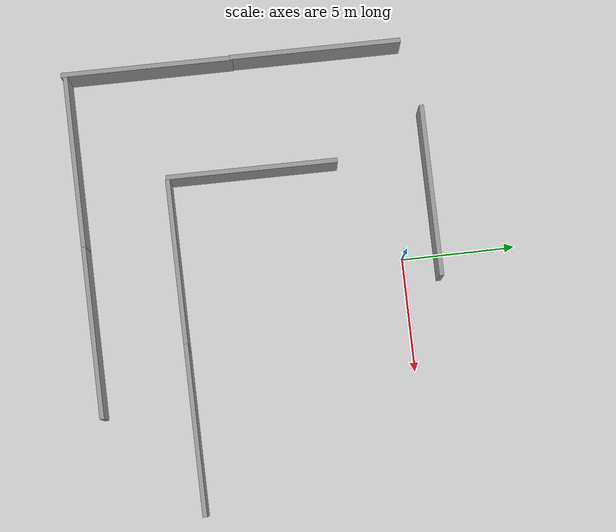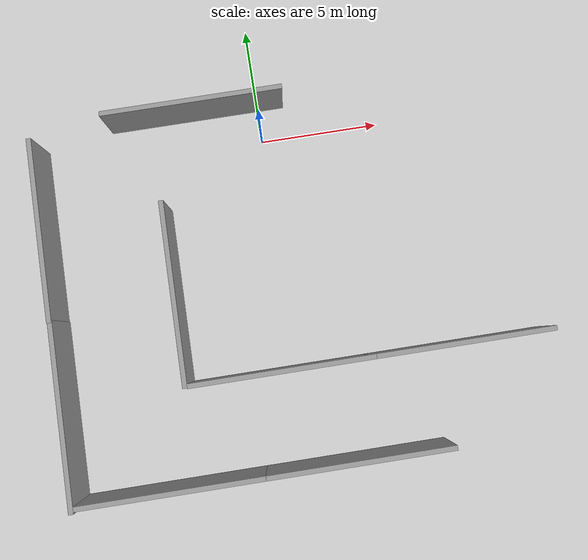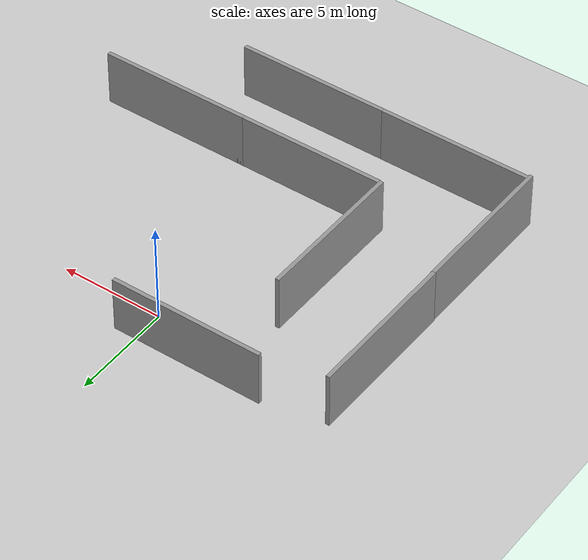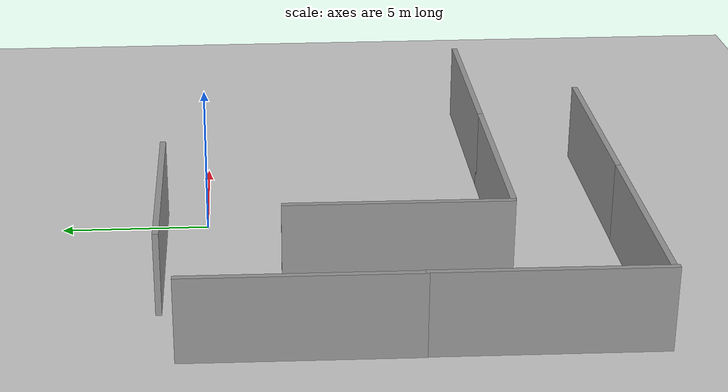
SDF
<sdf version="1.7">
 <world name="default">
  <model name="ground_plane">
   <static>1</static>
   <link name="link">
    <collision name="collision">
     <geometry><plane><normal>0 0 1</normal><size>100 100</size></plane></geometry>
     <surface><friction><ode><mu>100</mu><mu2>50</mu2></ode></friction></surface>
    </collision>
    <visual name="visual">
     <cast_shadows>0</cast_shadows>
     <geometry><plane><normal>0 0 1</normal><size>100 100</size></plane></geometry>
     <material>
      <script><uri>file://media/materials/scripts/gazebo.material</uri><name>Gazebo/Grey</name></script>
     </material>
    </visual>
   </link>
  </model>
  <model name="grey_wall">
   <static>1</static>
   <link name="link">
    <pose>0 0 1.4 0 -0 0</pose>
    <collision name="collision"><geometry><box><size>7.5 0.2 2.8</size></box></geometry></collision>
    <visual name="visual">
     <cast_shadows>0</cast_shadows>
     <geometry><box><size>7.5 0.2 2.8</size></box></geometry>
     <material>
      <script>
       <uri>model://grey_wall/materials/scripts</uri>
       <uri>model://grey_wall/materials/textures</uri>
       <name>vrc/grey_wall</name>
      </script>
     </material>
    </visual>
   </link>
   <pose>-5.64764 -13.7824 0 0 -0 0</pose>
  </model>
  <model name="grey_wall_0">
   <static>1</static>
   <link name="link">
    <pose>0 0 1.4 0 -0 0</pose>
    <collision name="collision"><geometry><box><size>7.5 0.2 2.8</size></box></geometry></collision>
    <visual name="visual">
     <cast_shadows>0</cast_shadows>
     <geometry><box><size>7.5 0.2 2.8</size></box></geometry>
     <material>
      <script>
       <uri>model://grey_wall/materials/scripts</uri>
       <uri>model://grey_wall/materials/textures</uri>
       <name>vrc/grey_wall</name>
      </script>
     </material>
    </visual>
   </link>
   <pose>1.85374 -13.7849 0 0 -0 0</pose>
  </model>
  <model name="grey_wall_2_clone_1">
   <static>1</static>
   <link name="link">
    <pose>0 0 1.4 0 -0 0</pose>
    <collision name="collision"><geometry><box><size>7.5 0.2 2.8</size></box></geometry></collision>
    <visual name="visual">
     <cast_shadows>0</cast_shadows>
     <geometry><box><size>7.5 0.2 2.8</size></box></geometry>
     <material>
      <script>
       <uri>model://grey_wall/materials/scripts</uri>
       <uri>model://grey_wall/materials/textures</uri>
       <name>vrc/grey_wall</name>
      </script>
     </material>
    </visual>
   </link>
   <pose>-9.43858 -10.2113 0 0 -0 1.5595</pose>
  </model>
  <model name="grey_wall_2_clone_2">
   <static>1</static>
   <link name="link">
    <pose>0 0 1.4 0 -0 0</pose>
    <collision name="collision"><geometry><box><size>7.5 0.2 2.8</size></box></geometry></collision>
    <visual name="visual">
     <cast_shadows>0</cast_shadows>
     <geometry><box><size>7.5 0.2 2.8</size></box></geometry>
     <material>
      <script>
       <uri>model://grey_wall/materials/scripts</uri>
       <uri>model://grey_wall/materials/textures</uri>
       <name>vrc/grey_wall</name>
      </script>
     </material>
    </visual>
   </link>
   <pose>-9.38037 -2.82099 0 0 -0 1.5595</pose>
  </model>
  <model name="grey_wall_clone_clone_0">
   <static>1</static>
   <link name="link">
    <pose>0 0 1.4 0 -0 0</pose>
    <collision name="collision"><geometry><box><size>7.5 0.2 2.8</size></box></geometry></collision>
    <visual name="visual">
     <cast_shadows>0</cast_shadows>
     <geometry><box><size>7.5 0.2 2.8</size></box></geometry>
     <material>
      <script>
       <uri>model://grey_wall/materials/scripts</uri>
       <uri>model://grey_wall/materials/textures</uri>
       <name>vrc/grey_wall</name>
      </script>
     </material>
    </visual>
   </link>
   <pose>-2.64138 1.49941 0 0 -0 0</pose>
  </model>
  <model name="grey_wall_clone_clone_2">
   <static>1</static>
   <link name="link">
    <pose>0 0 1.4 0 -0 0</pose>
    <collision name="collision"><geometry><box><size>7.5 0.2 2.8</size></box></geometry></collision>
    <visual name="visual">
     <cast_shadows>0</cast_shadows>
     <geometry><box><size>7.5 0.2 2.8</size></box></geometry>
     <material>
      <script>
       <uri>model://grey_wall/materials/scripts</uri>
       <uri>model://grey_wall/materials/textures</uri>
       <name>vrc/grey_wall</name>
      </script>
     </material>
    </visual>
   </link>
   <pose>6.5385 -9.84346 0 0 -0 0</pose>
  </model>
  <model name="grey_wall_clone_clone_3">
   <static>1</static>
   <link name="link">
    <pose>0 0 1.4 0 -0 0</pose>
    <collision name="collision"><geometry><box><size>7.5 0.2 2.8</size></box></geometry></collision>
    <visual name="visual">
     <cast_shadows>0</cast_shadows>
     <geometry><box><size>7.5 0.2 2.8</size></box></geometry>
     <material>
      <script>
       <uri>model://grey_wall/materials/scripts</uri>
       <uri>model://grey_wall/materials/textures</uri>
       <name>vrc/grey_wall</name>
      </script>
     </material>
    </visual>
   </link>
   <pose>-0.653187 -9.84346 0 0 -0 0</pose>
  </model>
  <model name="grey_wall_2_clone_4_clone_2_clone_4">
   <static>1</static>
   <link name="link">
    <pose>0 0 1.4 0 -0 0</pose>
    <collision name="collision"><geometry><box><size>7.5 0.2 2.8</size></box></geometry></collision>
    <visual name="visual">
     <cast_shadows>0</cast_shadows>
     <geometry><box><size>7.5 0.2 2.8</size></box></geometry>
     <material>
      <script>
       <uri>model://grey_wall/materials/scripts</uri>
       <uri>model://grey_wall/materials/textures</uri>
       <name>vrc/grey_wall</name>
      </script>
     </material>
    </visual>
   </link>
   <pose>-4.45359 -6.15992 0 0 -0 1.5595</pose>
  </model>
 </world>
</sdf>
